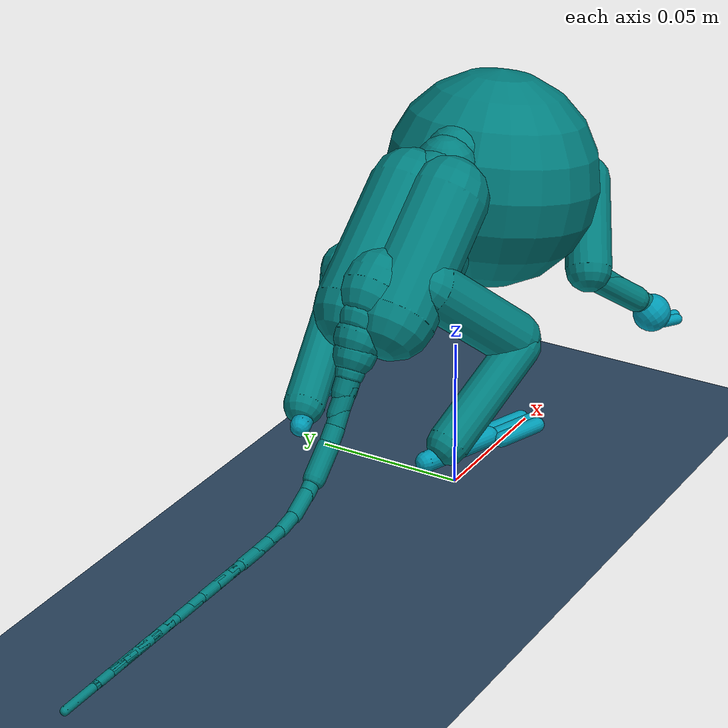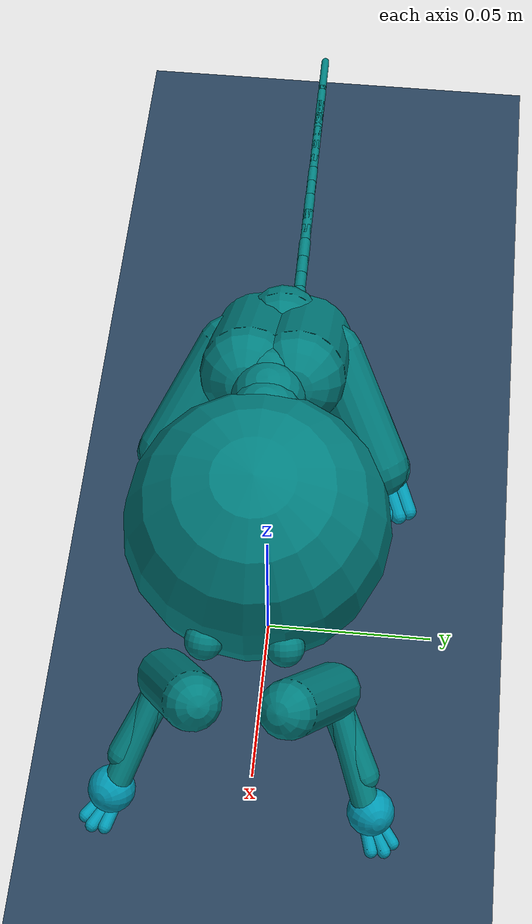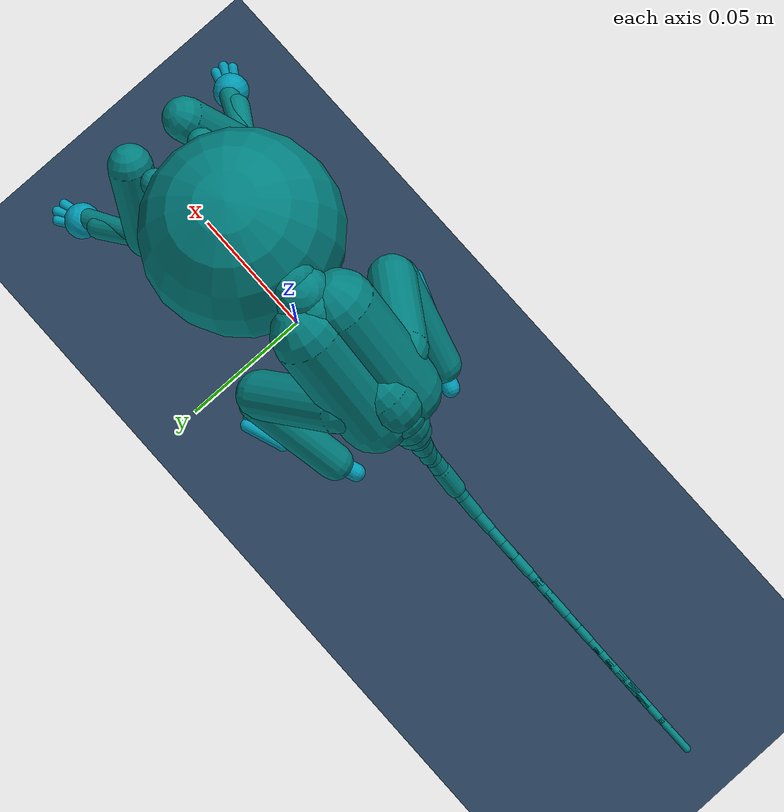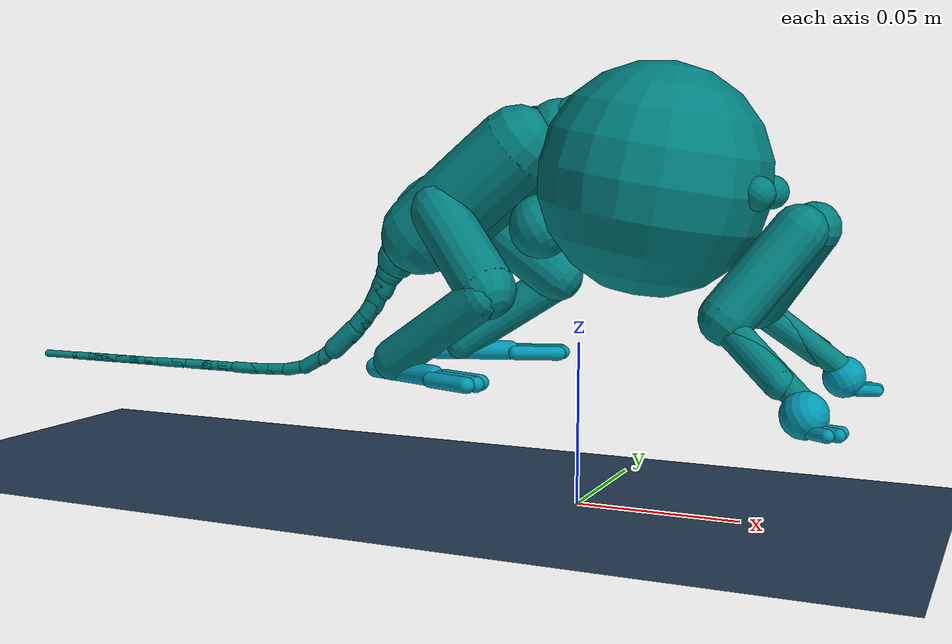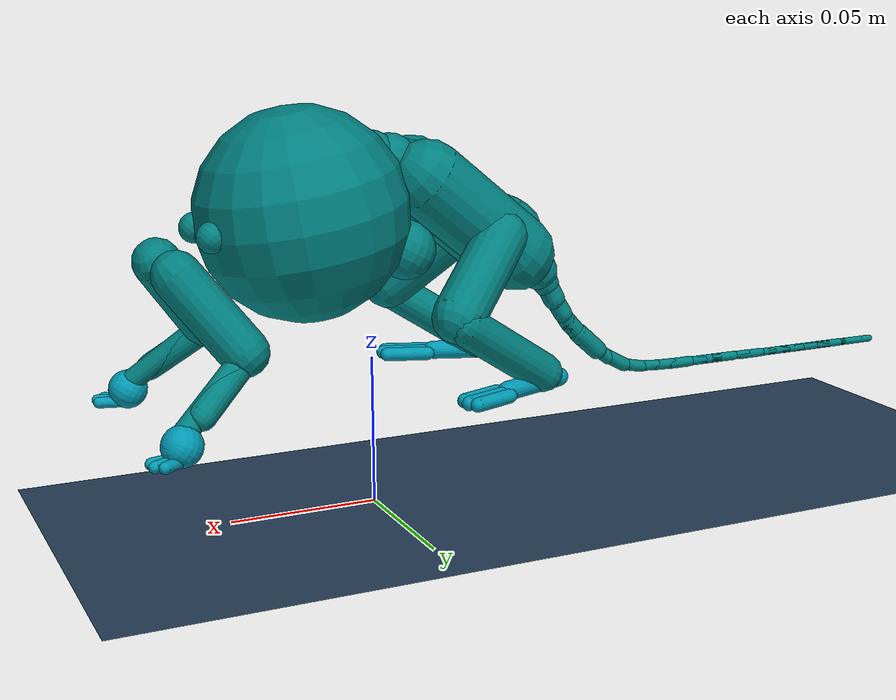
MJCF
<mujoco model="rat">
  <compiler angle="radian"/>
  <size njmax="8000" nconmax="4000"/>
  <default>
    <joint limited="true" solreflimit="0.01 1" solimplimit="0.99 0.9999 0" armature="6e-07" damping="0.001"/>
    <geom friction="0.7 0.005 0.0001" solref="0.005 1"/>
    <site group="3" rgba="0 0 1 1"/>
    <general ctrllimited="true" ctrlrange="-1 1" forcelimited="false" gainprm="0.01"/>
    <default class="bone">
      <geom contype="0" conaffinity="0" group="0" rgba="0.5 0.5 0.5 1" density="1100.0"/>
    </default>
    <default class="collision">
      <geom contype="1" conaffinity="1" condim="3" group="2"/>
      <default class="collision_primitive">
        <geom type="capsule" group="2" rgba="0 0.5 0.5 1" density="500.0"/>
        <default class="collision_primitive_paw">
          <geom condim="3" priority="1" rgba="0 0.6 0.7 1" friction="1.5 0.005 0.0001"/>
        </default>
        <default class="nonself_collision_primitive">
          <geom conaffinity="0"/>
        </default>
      </default>
    </default>
    <default class="lumbar">
      <joint group="3" pos="0.003 0 -0.003" armature="1e-05" damping="0.03" solimplimit="0 .99 .01"/>
      <general gainprm="0.15"/>
      <default class="lumbar_extend">
        <joint stiffness="0.02" range="-0.5235987755982988 0.7853981633974483"/>
        <general gainprm="0.4"/>
      </default>
      <default class="lumbar_bend">
        <joint stiffness="0.03" range="-0.5235987755982988 0.5235987755982988"/>
      </default>
      <default class="lumbar_twist">
        <joint stiffness="0.03" range="-0.5235987755982988 0.5235987755982988"/>
      </default>
    </default>
    <default class="cervical">
      <joint group="3" pos="-0.02 0 -0.05" stiffness="1.0" armature="0.001" damping="1.0" solimplimit="0 .99 .01"/>
      <default class="cervical_extend">
        <joint range="-0.4072434921320102 0.6108652381980153"/>
        <general gainprm="2.5"/>
      </default>
      <default class="cervical_bend">
        <joint range="-0.6108652381980153 0.6108652381980153"/>
        <general gainprm="2.5"/>
      </default>
      <default class="cervical_twist">
        <joint range="-0.6108652381980153 0.6108652381980153"/>
        <general gainprm="2.5"/>
      </default>
    </default>
    <default class="atlas">
      <joint axis="0 -1 0" stiffness="0.002" range="-0.08726646259971647 0.7853981633974483" damping="0.002" solimplimit="0 .99 .01"/>
      <general gainprm="0.025"/>
    </default>
    <default class="mandible">
      <joint stiffness="0.002" range="-0.296705972839036 0.2617993877991494" springref="-0.314159265359" damping="0.002" solimplimit="0 .99 .01"/>
      <general gainprm="0.025"/>
    </default>
    <default class="caudal">
      <joint group="3" stiffness="1e-05" damping="0.002" solimplimit="0 .99 .01"/>
      <general gainprm="0.005"/>
      <default class="caudal_extend">
        <joint range="-0.08726646259971647 0.08726646259971647"/>
      </default>
      <default class="caudal_bend">
        <joint range="-0.08726646259971647 0.08726646259971647"/>
      </default>
    </default>
    <default class="hip">
      <joint armature="1e-05" damping="0.02" solimplimit="0 .99 .01"/>
      <general gainprm="0.2"/>
      <default class="hip_supinate">
        <joint range="-0.6981317007977318 0.5235987755982988"/>
      </default>
      <default class="hip_abduct">
        <joint range="-0.5235987755982988 1.047197551196598"/>
      </default>
      <default class="hip_extend">
        <joint range="-1.570796326794897 1.047197551196598"/>
        <general gainprm="0.3"/>
      </default>
    </default>
    <default class="knee">
      <joint range="-1.221730476396031 1.53588974175501" damping="0.005" solimplimit="0 .99 .01"/>
      <general gainprm="0.2"/>
    </default>
    <default class="ankle">
      <joint range="-0.1396263401595464 1.396263401595464" damping="0.003" solimplimit="0 .99 .01"/>
      <general gainprm="0.2"/>
    </default>
    <default class="toe">
      <joint range="0 0.8726646259971648" damping="0.001" solimplimit="0 .99 .01"/>
      <general gainprm="0.025"/>
    </default>
    <default class="scapula">
      <joint damping="0.005" solimplimit="0 .99 .01"/>
      <general gainprm="0.25"/>
      <default class="scapula_supinate">
        <joint pos="0 0.005000000000000001 0" range="-0.0174532925199433 0.1745329251994329"/>
      </default>
      <default class="scapula_abduct">
        <joint pos="0 0.005000000000000001 -0.01" range="-0.2617993877991494 0.2617993877991494"/>
      </default>
      <default class="scapula_extend">
        <joint pos="0 0 0" range="-0.03490658503988659 0.03490658503988659"/>
        <general gainprm="0.25"/>
      </default>
    </default>
    <default class="shoulder">
      <joint range="-1.308996938995747 0.8726646259971648" damping="0.005" solimplimit="0 .99 .01"/>
      <general gainprm="0.15"/>
    </default>
    <default class="shoulder_sup">
      <joint range="-0.05235987755982989 1.134464013796314" damping="0.005" solimplimit="0 .99 .01"/>
      <general gainprm="0.15"/>
    </default>
    <default class="elbow">
      <joint range="-1.308996938995747 0.6981317007977318" damping="0.003" solimplimit="0 .99 .01"/>
      <general gainprm="0.15"/>
    </default>
    <default class="wrist">
      <joint range="-0.3490658503988659 2.094395102393195" damping="0.002" solimplimit="0 .99 .01"/>
      <general gainprm="0.05"/>
    </default>
    <default class="finger">
      <joint range="0 1.570796326794897" damping="0.002" solimplimit="0 .99 .01"/>
      <general gainprm="0.025"/>
    </default>
    <default class="sensor">
      <site group="4"/>
    </default>
    <default class="tracking_site">
      <site type="sphere" size="0.027" rgba="1 0 0 1" group="3"/>
    </default>
  </default>
  <visual>
    <quality shadowsize="2048"/>
  </visual>
  <statistic meansize="0.003"/>
  <asset>
    <texture type="skybox" builtin="gradient" rgb1=".3 .5 .7" rgb2="0 0 0" width="32" height="512"/>
    <texture name="body" type="cube" builtin="flat" mark="cross" width="128" height="128" rgb1="0.8 0.6 0.4" rgb2="0.8 0.6 0.4" markrgb="1 1 1" random="0.01"/>
    <material name="body" texture="body" texuniform="true" rgba="0.8 0.6 .4 1"/>
    <texture name="grid" type="2d" builtin="checker" width="512" height="512" rgb1=".1 .2 .3" rgb2=".2 .3 .4"/>
    <material name="grid" texture="grid" texrepeat="1 1" texuniform="true" reflectance=".2"/>
  </asset>
  <worldbody>
    <geom name="floor" size="0 0 .1" type="plane" material="grid" condim="3"/>
    <body name="torso" pos="0.03099526054578288 2.058524937651458e-07 0.1">
      <freejoint name="root"/>
      <light name="tracking_light" mode="trackcom" pos="0 0 3"/>
      <camera name="back" mode="trackcom" pos="-1 0 0.5" xyaxes="0 -1 0 1 0 2"/>
      <camera name="side" mode="trackcom" pos="0 -1 0.5" xyaxes="1 0 0 0 1 2"/>
      <camera name="side_alt" mode="trackcom" pos="0.5 -0.561 0.199" xyaxes="0.766 0.643 0.000 -0.162 0.192 0.968"/>
      <camera name="top" mode="trackcom" fovy="100.0" pos="0 0 1" zaxis="0 -0.2 1"/>
      <geom name="collision_torso" class="nonself_collision_primitive" type="sphere" size="0.035" density="468.251260009" pos="-0.008200000000000001 0 0" euler="0 0.1745329251994329 0"/>
      <body name="vertebra_1" pos="-0.01917944366660853 -1.880335592758969e-07 0.01684645690649089">
        <site name="tracking[vertebra_1]" class="tracking_site" />
        <geom name="vertebra_1_collision" class="nonself_collision_primitive" type="sphere" size="0.01" pos="0 0 -0.00164"/>
        <body name="vertebra_2" pos="-0.005629716335317717 2.594803588658443e-06 0.0005320922698783236">
          <site name="tracking[vertebra_2]" class="tracking_site" />
          <geom name="vertebra_2_collision" class="nonself_collision_primitive" type="sphere" size="0.01" pos="0 0 -0.00164"/>
          <body name="vertebra_3" pos="-0.006517166672542409 -1.041062865360766e-05 -9.467218894820495e-05">
            <site name="tracking[vertebra_3]" class="tracking_site" />
            <geom name="vertebra_3_collision" class="nonself_collision_primitive" type="sphere" size="0.01" pos="0 0 -0.00164"/>
            <body name="vertebra_4" pos="-0.006777704185187035 8.746101127162902e-06 -0.001299314772852475">
              <site name="tracking[vertebra_4]" class="tracking_site" />
              <geom name="vertebra_4_collision" class="nonself_collision_primitive" type="sphere" size="0.01" pos="0 0 -0.00164"/>
              <body name="vertebra_5" pos="-0.006890066562303102 -6.204333649723221e-06 -0.002498064978782454">
                <site name="tracking[vertebra_5]" class="tracking_site" />
                <geom name="vertebra_5_collision" class="nonself_collision_primitive" type="sphere" size="0.01" pos="0 0 -0.00164"/>
                <body name="vertebra_6" pos="-0.006185284434681512 5.254442128955049e-06 -0.003641122453027834">
                  <site name="tracking[vertebra_6]" class="tracking_site" />
                  <geom name="vertebra_6_collision" class="nonself_collision_primitive" type="sphere" size="0.01" pos="0 0 -0.00164"/>
                  <joint name="vertebra_6_twist" class="lumbar_twist" axis="1 0 0"/>
                  <body name="pelvis" pos="-0.01307140919884396 3.513221433820909e-06 -0.008120982829772532">
                    <site name="tracking[pelvis]" class="tracking_site" />
                    <geom name="collision_pelvis_L" class="nonself_collision_primitive" size="0.013 0.021 0" density="1548.57736929" pos="-0.00082 0.00656 -0.00574" euler="0 0.8726646259971648 0"/>
                    <geom name="collision_pelvis_R" class="nonself_collision_primitive" size="0.013 0.021 0" density="1548.57736929" pos="-0.00082 -0.00656 -0.00574" euler="0 0.8726646259971648 0"/>
                    <geom name="collision_pelvis_gut" class="nonself_collision_primitive" type="sphere" size="0.01" pos="0.0205 0 -0.0164" euler="0 -0.5235987755982988 0"/>
                    <site name="hip_L" size="0.0022" pos="-0.004810292416764615 0.01149125410671547 -0.009887823301127264"/>
                    <site name="hip_R" size="0.0022" pos="-0.004810292416764615 -0.01149125410671547 -0.009887823301127264"/>
                    <body name="upper_leg_L" pos="-0.004810292416764615 0.01149125410671547 -0.009887823301127264">
                      <site name="tracking[upper_leg_L]" class="tracking_site" />
                      <joint name="hip_L_supinate" class="hip_supinate" axis="-0 -0 1"/>
                      <joint name="hip_L_abduct" class="hip_abduct" axis="1 -0 -0"/>
                      <joint name="hip_L_extend" class="hip_extend" axis="0 1 0"/>
                      <site name="knee_L" type="cylinder" size="0.0006000000000000001 0.004" pos="0.01542264534586861 0.01747899805865108 -0.02570440890978101" zaxis="0 1 0"/>
                      <geom name="upper_leg_L0_collision" class="collision_primitive" size="0.008742403002230982 0.01748480600446196" density="1561.75550556" pos="0.008602524554195285 0.01075315569274411 -0.01290378683129293" euler="0.6108652381980153 -0.6981317007977318 0"/>
                      <body name="lower_leg_L" pos="0.01542264534586861 0.01747899805865108 -0.02570440890978101">
                        <site name="tracking[lower_leg_L]" class="tracking_site" />
                        <joint name="knee_L" class="knee" axis="0.5 -1 0"/>
                        <site name="ankle_L" type="cylinder" size="0.0006000000000000001 0.0026" pos="-0.03230154033783406 -0.004727054683585472 -0.02205958852339887" zaxis="0 1 0"/>
                        <body name="foot_L" pos="-0.03230154033783406 -0.004727054683585472 -0.02205958852339887">
                          <site name="tracking[foot_L]" class="tracking_site" />
                          <joint name="ankle_L" class="ankle" axis="-0.3 1 0"/>
                          <geom name="foot_L_collision" class="collision_primitive_paw" size="0.003210712207833968 0.01238417565878816" density="2041.15978228" pos="0.008274464032760684 0.002256672008934731 -0.002256672008934731" euler="1.570796326794897 -1.221730476396031 0"/>
                          <site name="toe_L" type="cylinder" size="0.0006000000000000001 0.005000000000000001" pos="0.02109994311367263 0.007614327297542731 -0.002752166493087734" zaxis="0 1 0"/>
                          <body name="toe_L" pos="0.02109994311367263 0.007614327297542731 -0.002752166493087734">
                            <site name="tracking[toe_L]" class="tracking_site" />
                            <joint name="toe_L" class="toe" axis="0 1 0"/>
                            <geom name="toe_L0_collision" class="collision_primitive_paw" size="0.002383208424149982 0.007253243030021683" pos="0.008496656120882544 -0.0008496656120882542 0" euler="1.570796326794897 -1.221730476396031 0"/>
                            <geom name="toe_L1_collision" class="collision_primitive_paw" size="0.002383208424149982 0.007771331817880374" pos="0.008071823314838416 0.002548996836264763 0" euler="1.570796326794897 -1.221730476396031 0"/>
                            <geom name="toe_L2_collision" class="collision_primitive_paw" size="0.002383208424149982 0.007253243030021683" pos="0.006797324896706034 0.005522826478573654 0" euler="1.570796326794897 -1.221730476396031 0"/>
                            <site name="sole_L" class="sensor" type="box" size="0.006 0.004 0.002" pos="0.008200000000000001 0.00246 -0.00164" euler="0 0 0.3490658503988659"/>
                          </body>
                        </body>
                        <geom name="lower_leg_L_collision" class="collision_primitive" size="0.006556802251673236 0.01923328660490816" density="1302.86687267" pos="-0.01226339046929431 0.0001224792426221771 -0.01071813365303941" quat="0.5843939876140521 0.278581552273902 0.3900453953818352 0.6547828460754284"/>
                      </body>
                    </body>
                    <body name="upper_leg_R" pos="-0.004810292416764615 -0.01149125410671547 -0.009887823301127264">
                      <site name="tracking[upper_leg_R]" class="tracking_site" />
                      <joint name="hip_R_supinate" class="hip_supinate" axis="0 0 -1"/>
                      <joint name="hip_R_abduct" class="hip_abduct" axis="-1 0 0"/>
                      <joint name="hip_R_extend" class="hip_extend" axis="0 1 0"/>
                      <site name="knee_R" type="cylinder" size="0.0006000000000000001 0.004" pos="0.01542264534586861 -0.01747899805865108 -0.02570440890978101" zaxis="0 1 0"/>
                      <geom name="upper_leg_R0_collision" class="collision_primitive" size="0.008742403002230982 0.01748480600446196" density="1561.75550556" pos="0.008602524554195285 -0.01075315569274411 -0.01290378683129293" euler="-0.6108652381980153 -0.6981317007977318 0"/>
                      <body name="lower_leg_R" pos="0.01542264534586861 -0.01747899805865108 -0.02570440890978101">
                        <site name="tracking[lower_leg_R]" class="tracking_site" />
                        <joint name="knee_R" class="knee" axis="-0.5 -1 0"/>
                        <site name="ankle_R" type="cylinder" size="0.0006000000000000001 0.0026" pos="-0.03230154033783406 0.004727054683585472 -0.02205958852339887" zaxis="0 1 0"/>
                        <body name="foot_R" pos="-0.03230154033783406 0.004727054683585472 -0.02205958852339887">
                          <site name="tracking[foot_R]" class="tracking_site" />
                          <joint name="ankle_R" class="ankle" axis="0.3 1 0"/>
                          <geom name="foot_R_collision" class="collision_primitive_paw" size="0.003210712207833968 0.01238417565878816" density="2041.15978228" pos="0.008274464032760684 -0.002256672008934731 -0.002256672008934731" euler="1.570796326794897 1.221730476396031 0"/>
                          <site name="toe_R" type="cylinder" size="0.0006000000000000001 0.005000000000000001" pos="0.02109994311367263 -0.007614327297542731 -0.002752166493087734" zaxis="0 1 0"/>
                          <body name="toe_R" pos="0.02109994311367263 -0.007614327297542731 -0.002752166493087734">
                            <site name="tracking[toe_R]" class="tracking_site" />
                            <joint name="toe_R" class="toe" axis="0 1 0"/>
                            <geom name="toe_R0_collision" class="collision_primitive_paw" size="0.002383208424149982 0.007253243030021683" pos="0.008496656120882544 0.0008496656120882542 0" euler="1.570796326794897 1.221730476396031 0"/>
                            <geom name="toe_R1_collision" class="collision_primitive_paw" size="0.002383208424149982 0.007771331817880374" pos="0.008071823314838416 -0.002548996836264763 0" euler="1.570796326794897 1.221730476396031 0"/>
                            <geom name="toe_R2_collision" class="collision_primitive_paw" size="0.002383208424149982 0.007253243030021683" pos="0.006797324896706034 -0.005522826478573654 0" euler="1.570796326794897 1.221730476396031 0"/>
                            <site name="sole_R" class="sensor" type="box" size="0.006 0.004 0.002" pos="0.008200000000000001 -0.00246 -0.00164" euler="0 0 -0.3490658503988659"/>
                          </body>
                        </body>
                        <geom name="lower_leg_R_collision" class="collision_primitive" size="0.006556802251673236 0.01923328660490816" density="1302.86687267" pos="-0.01202896613332032 -0.0001615786954038913 -0.0105741369075766" quat="0.6564315036111004 0.3901417719765998 0.2779576926818845 0.5827749135856758"/>
                      </body>
                    </body>
                    <body name="vertebra_C1" pos="-0.01578991172983967 0 -0.01188162292618369">
                      <body name="vertebra_C2" pos="-0.003877053782139318 0 -0.004226431204517265">
                        <body name="vertebra_C3" pos="-0.003424026812590301 0 -0.004263077436113009">
                          <body name="vertebra_C4" pos="-0.003271874666658243 0 -0.004416838152219076">
                            <body name="vertebra_C5" pos="-0.003175974271018995 0 -0.004569340859213865">
                              <body name="vertebra_C6" pos="-0.003119193850481998 0 -0.004901355281343103">
                                <body name="vertebra_C7" pos="-0.003215811269353427 0 -0.005644371131998142">
                                  <body name="vertebra_C8" pos="-0.003445853504479746 0 -0.005518181272185016">
                                    <body name="vertebra_C9" pos="-0.00428517277518055 0 -0.005115018280065306">
                                      <body name="vertebra_C10" pos="-0.004861545164642819 0 -0.004562186342662474">
                                        <body name="vertebra_C11" pos="-0.005374786984897312 0 -0.004364207168994159">
                                          <body name="vertebra_C12" pos="-0.006134478460615445 0 -0.003841502801916079">
                                            <body name="vertebra_C13" pos="-0.00689742745021331 0 -0.002592428185172008">
                                              <body name="vertebra_C14" pos="-0.006825037737343853 0 -0.0009088998932926352">
                                                <body name="vertebra_C15" pos="-0.006526211069134326 0 -0.0003153309968866059">
                                                  <body name="vertebra_C16" pos="-0.006693909447912509 0 -0.0001384885270556547">
                                                    <body name="vertebra_C17" pos="-0.006485426246850028 0 -1.670467139216664e-05">
                                                      <body name="vertebra_C18" pos="-0.006207432181797656 0 1.825573131422967e-10">
                                                        <body name="vertebra_C19" pos="-0.006204259597825435 0 -8.201902227376357e-10">
                                                          <body name="vertebra_C20" pos="-0.006228376819942582 0 2.516520472814411e-06">
                                                            <body name="vertebra_C21" pos="-0.006117653417468877 0 -0.0001096641718318435">
                                                            <body name="vertebra_C22" pos="-0.006508107849533902 0 -1.311987483649039e-05">
                                                            <body name="vertebra_C23" pos="-0.006390755412623964 0 1.751401410207947e-09">
                                                            <body name="vertebra_C24" pos="-0.006180715195251588 0 -1.247135173292058e-09">
                                                            <body name="vertebra_C25" pos="-0.005968198951736014 0 1.379492349778272e-10">
                                                            <body name="vertebra_C26" pos="-0.005628676580141834 0 -1.365630198950016e-09">
                                                            <body name="vertebra_C27" pos="-0.005193120282271783 0 1.395692942078239e-09">
                                                            <body name="vertebra_C28" pos="-0.005036239104451245 0 5.073982356059771e-07">
                                                            <body name="vertebra_C29" pos="-0.004773896837169728 0 -6.205554570421282e-11">
                                                            <body name="vertebra_C30" pos="-0.00400535162294913 0 -4.197183187153738e-07">
                                                            <geom name="vertebra_C30_collision" class="collision_primitive" size="0.001297856215387583 0.00616252573672682 0.003456539940088987" density="507.157357703" pos="-3.413935800722356e-17 0 0" quat="0 0.7071067811865475 0 0.7071067811865476"/>
                                                            <site name="tracking[vertebra_C30]" class="tracking_site" />

                                                          </body>
                                                            <joint name="vertebra_C29_bend" class="caudal_bend" pos="0.00374077633023262 0 4.862608565869494e-11" axis="1.299892892972596e-08 0 -0.9999999999999999" range="-0.2617993877991494 0.2617993877991494"/>
                                                            <geom name="vertebra_C29_collision" class="collision_primitive" size="0.001296832459047437 0.005963775183772668 0.002618767786771059" density="507.157357703" pos="2.275957200481571e-17 0 0" quat="0 0.7071067811865475 0 0.7071067811865476"/>
                                                            <site name="tracking[vertebra_C29]" class="tracking_site" />

                                                          </body>
                                                            <geom name="vertebra_C28_collision" class="collision_primitive" size="0.001296832342632115 0.005764920220826752 0.002877779770642519" density="507.157357703" pos="-2.275957200481571e-17 0 0" quat="0 0.7071067811865475 0 0.7071067811865476"/>
                                                            <site name="tracking[vertebra_C28]" class="tracking_site" />

                                                          </body>
                                                            <joint name="vertebra_C27_extend" class="caudal_extend" pos="0.003853817004710296 0 -1.035744388955742e-09" axis="0 0.9999999999999999 0" range="-0.2617993877991494 0.2617993877991494"/>
                                                            <geom name="vertebra_C27_collision" class="collision_primitive" size="0.001379601657390594 0.005566182837355882 0.003061448689550161" density="507.157357703" pos="-2.275957200481571e-17 -5.689893001203927e-18 0" quat="0 0.7071067811865475 0 0.7071067811865476"/>
                                                            <site name="tracking[vertebra_C27]" class="tracking_site" />

                                                          </body>
                                                            <geom name="vertebra_C26_collision" class="collision_primitive" size="0.001379605033434927 0.005367331657907926 0.003061428898945451" density="507.157357703" pos="0 0 0" quat="0 0.7071067811865475 0 0.7071067811865476"/>
                                                            <site name="tracking[vertebra_C26]" class="tracking_site" />

                                                          </body>
                                                            <joint name="vertebra_C25_bend" class="caudal_bend" pos="0.003596235066652297 0 -8.31235487048931e-11" axis="-2.311404765380703e-08 0 -0.9999999999999998" range="-0.2617993877991494 0.2617993877991494"/>
                                                            <geom name="vertebra_C25_collision" class="collision_primitive" size="0.001379601657390594 0.005168589268578216 0.003478922415524721" density="507.157357703" pos="2.275957200481571e-17 5.689893001203927e-18 0" quat="0 0.7071067811865475 0 0.7071067811865476"/>
                                                            <site name="tracking[vertebra_C25]" class="tracking_site" />

                                                          </body>
                                                            <geom name="vertebra_C24_collision" class="collision_primitive" size="0.00137960200663656 0.004969772635377012 0.003478918690234423" density="507.157357703" pos="0 5.689893001203927e-18 0" quat="0 0.7071067811865475 0 0.7071067811865476"/>
                                                            <site name="tracking[vertebra_C24]" class="tracking_site" />

                                                          </body>
                                                            <joint name="vertebra_C23_extend" class="caudal_extend" pos="0.003596219234168395 0 -9.855522597059318e-10" axis="0 1 0" range="-0.2617993877991494 0.2617993877991494"/>
                                                            <geom name="vertebra_C23_collision" class="collision_primitive" size="0.001379598979838192 0.004770975443534553 0.00374077633023262" density="507.157357703" pos="0 0 0" quat="0 0.7071067811865475 0 0.7071067811865476"/>
                                                            <site name="tracking[vertebra_C23]" class="tracking_site" />

                                                          </body>
                                                            <geom name="vertebra_C22_collision" class="collision_primitive" size="0.0013796032872051 0.004572178106172942 0.003740778425708413" density="507.157357703" pos="2.275957200481571e-17 0 0" quat="0 0.7071067811865475 0 0.7071067811865476"/>
                                                            <site name="tracking[vertebra_C22]" class="tracking_site" />

                                                          </body>
                                                            <joint name="vertebra_C21_bend" class="caudal_bend" pos="0.003863156863235094 0 6.925039212804248e-05" axis="0.01792297618959377 0 -0.9998393705613454" range="-0.2617993877991494 0.2617993877991494"/>
                                                            <geom name="vertebra_C21_collision" class="collision_primitive" size="0.00153051526285708 0.004972128779627383 0.003853817004710436" density="507.157357703" pos="-2.275957200481571e-17 0 0" quat="0 0.7071067811865475 0 0.7071067811865476"/>
                                                            <site name="tracking[vertebra_C21]" class="tracking_site" />
                                                          </body>
                                                            <geom name="vertebra_C20_collision" class="collision_primitive" size="0.001498286379501224 0.005176536360522732 0.003596158232539892" density="507.157357703" pos="0 2.844946500601963e-18 0" quat="0 0.7071067811865475 0 0.7071067811865476"/>
                                                            <site name="tracking[vertebra_C20]" class="tracking_site" />
                                                          </body>
                                                          <joint name="vertebra_C19_extend" class="caudal_extend" pos="0.00427856529131528 0 5.656174381406233e-10" axis="-0 1 0" range="-0.2617993877991494 0.2617993877991494"/>
                                                          <geom name="vertebra_C19_collision" class="collision_primitive" size="0.00163395400159061 0.005171378143131733 0.003596235066652298" density="507.157357703" pos="0 0 0" quat="0 0.7071067811865475 0 0.7071067811865476"/>
                                                          <site name="tracking[vertebra_C19]" class="tracking_site" />
                                                        </body>
                                                        <geom name="vertebra_C18_collision" class="collision_primitive" size="0.001633956097066402 0.004912774951662868 0.003596230177208781" density="507.157357703" pos="-4.551914400963142e-17 3.556183125752454e-19 0" quat="0 0.7071067811865475 0 0.7071067811865476"/>
                                                        <site name="tracking[vertebra_C18]" class="tracking_site" />
                                                      </body>
                                                      <joint name="vertebra_C17_bend" class="caudal_bend" pos="0.004279410240846748 0 1.102258187892252e-05" axis="0.002575715973669538 0 -0.9999966828381097" range="-0.2617993877991494 0.2617993877991494"/>
                                                      <geom name="vertebra_C17_collision" class="collision_primitive" size="0.001633955631405115 0.004654210468288511 0.00359621923416853" density="507.157357703" pos="4.551914400963142e-17 3.556183125752454e-19 0" quat="0 0.7071067811865475 0 0.7071067811865476"/>
                                                      <site name="tracking[vertebra_C17]" class="tracking_site" />
                                                    </body>
                                                    <geom name="vertebra_C16_collision" class="collision_primitive" size="0.00187811441719532 0.004395640251459554 0.003866892773658037" density="507.157357703" pos="4.551914400963142e-17 0 0" quat="0 0.7071067811865475 0 0.7071067811865476"/>
                                                    <site name="tracking[vertebra_C16]" class="tracking_site" />
                                                  </body>
                                                  <joint name="vertebra_C15_extend" class="caudal_extend" pos="0.003932832330984124 0 0.0001900251043645143" axis="-0 0.9999999999999999 0" range="-0.2617993877991494 0.2617993877991494"/>
                                                  <geom name="vertebra_C15_collision" class="collision_primitive" size="0.001845342689193785 0.004137067589908838 0.003863777499645948" density="507.157357703" pos="0 -2.844946500601963e-18 0" quat="-3.048411496515643e-15 0.6991848455046811 3.117107305228081e-15 0.7149409428873096"/>
                                                  <site name="tracking[vertebra_C15]" class="tracking_site" />
                                                </body>
                                                <geom name="vertebra_C14_collision" class="collision_primitive" size="0.00184506073128432 0.003878506540786475 0.003863667836412787" density="507.157357703" pos="-4.551914400963142e-17 -4.267419750902945e-18 0" quat="0 0.6866112770928985 0 0.7270247273434782"/>
                                                <site name="tracking[vertebra_C14]" class="tracking_site" />
                                              </body>
                                              <joint name="vertebra_C13_bend" class="caudal_bend" pos="0.003512235031584721 0 0.001320088852626807" axis="0.3518244833508478 0 -0.9360659874789323" range="-0.2617993877991494 0.2617993877991494"/>
                                              <geom name="vertebra_C13_collision" class="collision_primitive" size="0.002090706257149577 0.003959977824706584 0.004278565291315317" density="507.157357703" pos="-1.137978600240785e-17 0 1.778091562876227e-19" quat="1.892164903646171e-16 0.6293932092262298 -2.336181429597261e-16 0.7770869888113604"/>
                                              <site name="tracking[vertebra_C13]" class="tracking_site" />
                                            </body>
                                            <geom name="vertebra_C12_collision" class="collision_primitive" size="0.002433547750115395 0.004146181046962738 0.004279083106666803" density="507.157357703" pos="0 0 0" quat="1.235560731911126e-17 0.5080793265726891 -7.288463628123299e-18 0.8613102796956755"/>
                                            <site name="tracking[vertebra_C12]" class="tracking_site" />
                                          </body>
                                          <joint name="vertebra_C11_extend" class="caudal_extend" pos="0.002737042072842745 0 0.002222417124567619" axis="-0 0.9999999999999998 0" range="-0.2617993877991494 0.2617993877991494"/>
                                          <geom name="vertebra_C11_collision" class="collision_primitive" size="0.002499659545719624 0.003896944806911051 0.0042794244363904" density="507.157357703" pos="-2.275957200481571e-17 0 0" quat="8.0408085539503e-17 0.4349444185915732 -3.883920751947562e-17 0.9004573020060631"/>
                                          <site name="tracking[vertebra_C11]" class="tracking_site" />
                                        </body>
                                        <geom name="vertebra_C10_collision" class="collision_primitive" size="0.003421195782721043 0.005196776997763664 0.003937873989343643" density="507.157357703" pos="0 0 -1.422473250300982e-18" quat="6.606927199194023e-17 0.404822478038031 -2.925028864881283e-17 0.914395298147988"/>
                                        <site name="tracking[vertebra_C10]" class="tracking_site" />
                                      </body>
                                      <joint name="vertebra_C9_bend" class="caudal_bend" pos="0.002886456803488155 0 0.003445433845742364" axis="0.7665487416508834 0 -0.6421861308635113" range="-0.2617993877991494 0.2617993877991494"/>
                                      <geom name="vertebra_C9_collision" class="collision_primitive" size="0.003130586817860603 0.004494897730182856 0.003937420435249805" density="507.157357703" pos="0 0 -2.844946500601963e-18" quat="0.9339363308955284 -2.188685129702187e-17 0.3574394072194587 5.718710691193161e-17"/>
                                      <site name="tracking[vertebra_C9]" class="tracking_site" />
                                    </body>
                                    <geom name="vertebra_C8_collision" class="collision_primitive" size="0.003015818307176232 0.003957028646254912 0.003936874680221081" density="507.157357703" pos="0 0 -2.844946500601963e-18" quat="0.9557562961254608 -1.801208397451436e-17 0.2941596546376485 5.852319444074877e-17"/>
                                    <site name="tracking[vertebra_C8]" class="tracking_site" />
                                  </body>
                                  <joint name="vertebra_C7_extend" class="caudal_extend" pos="0.00269018377049155 0 0.004721793147078994" axis="-0 0.9999999999999998 0" range="-0.2617993877991494 0.2617993877991494"/>
                                  <geom name="vertebra_C7_collision" class="collision_primitive" size="0.003256943542510271 0.004638898652046919 0.003752123331651092" density="507.157357703" pos="0 0 0" quat="-0.9587181623873691 -0.02864387142163538 -0.2629262253293439 0.1044452668751926"/>
                                  <site name="tracking[vertebra_C7]" class="tracking_site" />
                                </body>
                                <joint name="vertebra_C6_extend" class="caudal_extend" pos="0.002103353485914151 0 0.00330511125979672" axis="-0 0.9999999999999998 0" range="-0.2617993877991494 0.2617993877991494"/>
                                <joint name="vertebra_C6_bend" class="caudal_bend" pos="0.002103353485914151 0 0.00330511125979672" axis="0.8436498258045544 0 -0.5368938176398985" range="-0.2617993877991494 0.2617993877991494"/>
                                <geom name="vertebra_C6_collision" class="collision_primitive" size="0.003849131055176258 0.004441792552825063 0.003917634021490812" density="507.157357703" pos="0 0 -5.689893001203927e-18" quat="-0.9684724633255426 -0.0201653665451908 -0.2338356379719502 0.08351850206094803"/>
                                <site name="tracking[vertebra_C6]" class="tracking_site" />
                              </body>
                              <joint name="vertebra_C5_extend" class="caudal_extend" pos="0.002012248229580733 0 0.00289506377246373" axis="-0 0.9999999999999998 0" range="-0.2617993877991494 0.2617993877991494"/>
                              <joint name="vertebra_C5_bend" class="caudal_bend" pos="0.002012248229580733 0 0.00289506377246373" axis="0.8211323953906199 0 -0.5707377587299287" range="-0.2617993877991494 0.2617993877991494"/>
                              <geom name="vertebra_C5_collision" class="collision_primitive" size="0.004545329604297876 0.003776637255214155 0.003525696694850922" density="507.157357703" pos="0 0 0" quat="0.959555122982002 -1.723817788817547e-17 0.2815208091047534 5.875580549826768e-17"/>
                              <site name="tracking[vertebra_C5]" class="tracking_site" />
                            </body>
                            <joint name="vertebra_C4_extend" class="caudal_extend" pos="0.002536050295425576 0 0.003423518576346546" axis="-0 0.9999999999999996 0" range="-0.2617993877991494 0.2617993877991494"/>
                            <joint name="vertebra_C4_bend" class="caudal_bend" pos="0.002536050295425576 0 0.003423518576346546" axis="0.8035447758282259 0 -0.595244313907462" range="-0.2617993877991494 0.2617993877991494"/>
                            <geom name="vertebra_C4_collision" class="collision_primitive" size="0.006652826443314552 0.003851699293591082 0.004260519985109568" density="507.157357703" pos="0 0 -5.689893001203927e-18" quat="0.6698964656770412 0.2263597253784533 0.2263597253784533 0.6698964656770412"/>
                            <site name="tracking[vertebra_C4]" class="tracking_site" />
                          </body>
                          <joint name="vertebra_C3_extend" class="caudal_extend" pos="0.002814632916334075 0 0.003504352837554861" axis="-0 0.9999999999999998 0" range="-0.2617993877991494 0.2617993877991494"/>
                          <joint name="vertebra_C3_bend" class="caudal_bend" pos="0.002814632916334075 0 0.003504352837554861" axis="0.7796571863505312 0 -0.6262065727633115" range="-0.2617993877991494 0.2617993877991494"/>
                          <geom name="vertebra_C3_collision" class="collision_primitive" size="0.007895978167653084 0.00409743981435895 0.00449473550543189" density="507.157357703" pos="0 0 5.689893001203927e-18" quat="0.658413368499565 0.2578601097127201 0.2578601097127201 0.658413368499565"/>
                          <site name="tracking[vertebra_C3]" class="tracking_site" />
                        </body>
                        <joint name="vertebra_C2_extend" class="caudal_extend" pos="0.00355852682138871 0 0.003879200456107687" axis="-0 1 0" range="-0.2617993877991494 0.2617993877991494"/>
                        <joint name="vertebra_C2_bend" class="caudal_bend" pos="0.00355852682138871 0 0.003879200456107687" axis="0.7369087259505994 0 -0.6759922555901543" range="-0.2617993877991494 0.2617993877991494"/>
                        <site name="tracking[vertebra_C2]" class="tracking_site" />
                        <geom name="vertebra_C2_collision" class="collision_primitive" size="0.008360366337001324 0.003506151144392788 0.005264153238385916" density="507.157357703" pos="0 0 0" quat="0.6165945006583455 0.3461375763448482 0.3461375763448482 0.6165945006583455"/>
                      </body>
                      <joint name="vertebra_C1_extend" class="caudal_extend" pos="0.004342320538000662 0 0.003267517649237096" axis="0 1 0" range="-0.2617993877991494 0.2617993877991494"/>
                      <joint name="vertebra_C1_bend" class="caudal_bend" pos="0.004342320538000662 0 0.003267517649237096" axis="0.6012684687925202 0 -0.7990470752314273" range="-0.2617993877991494 0.2617993877991494"/>
                      <geom name="vertebra_C1_collision" class="collision_primitive" size="0.01096499338746071 0.002370424568653107 0.005434373859316111" density="507.157357703" pos="0 -2.778268066994105e-21 0" quat="0.5772408551843025 0.3506607415056362 0.3240276763775721 0.662447057819841"/>
                      <site name="tracking[vertebra_C1]" class="tracking_site" />
                    </body>
                  </body>
                </body>
                <joint name="vertebra_5_bend" class="lumbar_bend" axis="0 0 1"/>
              </body>
              <joint name="vertebra_4_extend" class="lumbar_extend" axis="0 1 0"/>
            </body>
            <joint name="vertebra_3_twist" class="lumbar_twist" axis="1 0 0"/>
          </body>
          <joint name="vertebra_2_bend" class="lumbar_bend" axis="0 0 1"/>
        </body>
        <joint name="vertebra_1_extend" class="lumbar_extend" axis="0 1 0"/>
      </body>
      <body name="scapula_L" pos="0.00656 0.00164 0.01148">
        <site name="tracking[scapula_L]" class="tracking_site" />
        <joint name="scapula_L_supinate" class="scapula_supinate" pos="0 -0.005000000000000001 0" axis="-0 -0 1"/>
        <joint name="scapula_L_abduct" class="scapula_abduct" pos="0 -0.005000000000000001 -0.01" axis="1 -0 -0"/>
        <joint name="scapula_L_extend" class="scapula_extend" pos="0 0 0" axis="0.3 1 0"/>
        <site name="shoulder_L" size="0.002" pos="0.0287 0.00984 -0.02542"/>
        <body name="upper_arm_L" pos="0.0287 0.00984 -0.02542">
          <site name="tracking[upper_arm_L]" class="tracking_site" />
          <joint name="shoulder_L" class="shoulder" axis="0 1 0"/>
          <joint name="shoulder_sup_L" class="shoulder_sup" axis="0 0 -1"/>
          <site name="elbow_L" type="cylinder" size="0.0006000000000000001 0.004" pos="-0.01593120836133218 0.01035528543486592 -0.02230369170586505" zaxis="0 1 0.2"/>
          <body name="lower_arm_L" pos="-0.01593120836133218 0.01035528543486592 -0.02230369170586505">
            <site name="tracking[lower_arm_L]" class="tracking_site" />
            <joint name="elbow_L" class="elbow" axis="0 1 0.2"/>
            <site name="wrist_L" type="cylinder" size="0.0008 0.0034" pos="0.02160265376479308 0.01260154802946263 -0.01980243261772699" zaxis="0 1 0"/>
            <body name="hand_L" pos="0.02160265376479308 0.01260154802946263 -0.01980243261772699">
              <site name="tracking[hand_L]" class="tracking_site" />
              <joint name="wrist_L" class="wrist" axis="0.6 -1 0"/>
              <geom name="hand_L_collision" class="collision_primitive_paw" type="sphere" size="0.006470191588681792 0.003697252336389595 0.002218351401833757" density="2531.78122831" pos="0.001515873457919734 0.0007579367289598669 -0.004547620373759201" euler="-0.6981317007977318 0.8726646259971648 0.7853981633974483"/>
              <site name="finger_L" type="cylinder" size="0.0006000000000000001 0.005000000000000001" pos="0.003031746915839468 0.001515873457919734 -0.008337304018558537" zaxis="-0.2 1 0"/>
              <body name="finger_L" pos="0.003031746915839468 0.001515873457919734 -0.008337304018558537">
                <site name="tracking[finger_L]" class="tracking_site" />
                <joint name="finger_L" class="finger" axis="-0.5 1 0"/>
                <geom name="finger_L0_collision" class="collision_primitive_paw" size="0.001848626168194797 0.003235095794340896" pos="0.004926588738239136 -0.0007579367289598669 0" euler="1.570796326794897 -1.308996938995747 0"/>
                <geom name="finger_L1_collision" class="collision_primitive_paw" size="0.001848626168194797 0.003697252336389595" pos="0.004547620373759201 0.001894841822399667 0" euler="1.570796326794897 -1.099557428756428 0"/>
                <geom name="finger_L2_collision" class="collision_primitive_paw" size="0.001848626168194797 0.003235095794340896" pos="0.002652778551359534 0.003789683644799335 0" euler="1.570796326794897 -0.9599310885968813 0"/>
                <site name="palm_L" class="sensor" type="box" size="0.004 0.004 0.002" pos="0.00492 0.00246 -0.00164" euler="0 0 0.4886921905584123"/>
              </body>
            </body>
            <geom name="radius_L_collision" class="collision_primitive" size="0.003732165792697991 0.01591658941003555" pos="0.01150545467526729 0.006850732667129763 -0.01222632491350886" quat="0.02376493230846292 0.7917721441518218 0.4232293467931716 0.4397829234413568"/>
            <geom name="ulna_L_collision" class="collision_primitive" size="0.004390783285527048 0.01317234985658114" pos="0.006749764363547758 0.004992418652633264 -0.009489848452311813" quat="0.01282244452041863 0.7446249872782607 0.4776065607195328 0.4661128472752391"/>
          </body>
          <geom name="humerus_L_collision" class="collision_primitive" size="0.007771321151869356 0.01554264230373871" pos="-0.007743344450064287 0.005787978890072665 -0.01198335273722202" quat="0.472560999180163 0.3450082805420177 0.0007016050154913519 0.8109592444517103"/>
        </body>
        <geom name="scapula_L_collision" class="nonself_collision_primitive" type="sphere" size="0.005005370825529099 0.01463182792067528 0.02431104406714439" density="513.564612303" pos="0.01757062251063465 0.008636916680112587 -0.01522952249267691" quat="0.1844194062696375 0.7692222855376651 0.4740322845517004 0.3867556738123709"/>
      </body>
      <body name="scapula_R" pos="0.00656 -0.00164 0.01148">
        <site name="tracking[scapula_R]" class="tracking_site" />
        <joint name="scapula_R_supinate" class="scapula_supinate" pos="0 0.005000000000000001 0" axis="0 0 -1"/>
        <joint name="scapula_R_abduct" class="scapula_abduct" pos="0 0.005000000000000001 -0.01" axis="-1 0 0"/>
        <joint name="scapula_R_extend" class="scapula_extend" pos="0 0 0" axis="-0.3 1 0"/>
        <site name="shoulder_R" size="0.002" pos="0.0287 -0.00984 -0.02542"/>
        <body name="upper_arm_R" pos="0.0287 -0.00984 -0.02542">
          <site name="tracking[upper_arm_R]" class="tracking_site" />
          <joint name="shoulder_R" class="shoulder" axis="0 1 0"/>
          <joint name="shoulder_sup_R" class="shoulder_sup" axis="-0 -0 1"/>
          <site name="elbow_R" type="cylinder" size="0.0006000000000000001 0.004" pos="-0.01593120836133218 -0.01035528543486592 -0.02230369170586505" zaxis="0 1 -0.2"/>
          <body name="lower_arm_R" pos="-0.01593120836133218 -0.01035528543486592 -0.02230369170586505">
            <site name="tracking[lower_arm_R]" class="tracking_site" />
            <joint name="elbow_R" class="elbow" axis="0 1 -0.2"/>
            <site name="wrist_R" type="cylinder" size="0.0008 0.0034" pos="0.02160265376479308 -0.01260154802946263 -0.01980243261772699" zaxis="0 1 0"/>
            <body name="hand_R" pos="0.02160265376479308 -0.01260154802946263 -0.01980243261772699">
              <site name="tracking[hand_R]" class="tracking_site" />
              <joint name="wrist_R" class="wrist" axis="-0.6 -1 0"/>
              <geom name="hand_R_collision" class="collision_primitive_paw" type="sphere" size="0.006470191588681792 0.003697252336389595 0.002218351401833757" density="2531.78122831" pos="0.001515873457919734 -0.0007579367289598669 -0.004547620373759201" euler="0.6981317007977318 0.8726646259971648 -0.7853981633974483"/>
              <site name="finger_R" type="cylinder" size="0.0006000000000000001 0.005000000000000001" pos="0.003031746915839468 -0.001515873457919734 -0.008337304018558537" zaxis="0.2 1 0"/>
              <body name="finger_R" pos="0.003031746915839468 -0.001515873457919734 -0.008337304018558537">
                <joint name="finger_R" class="finger" axis="0.5 1 0"/>
                <geom name="finger_R0_collision" class="collision_primitive_paw" size="0.001848626168194797 0.003235095794340896" pos="0.004926588738239136 0.0007579367289598669 0" euler="1.570796326794897 1.308996938995747 0"/>
                <geom name="finger_R1_collision" class="collision_primitive_paw" size="0.001848626168194797 0.003697252336389595" pos="0.004547620373759201 -0.001894841822399667 0" euler="1.570796326794897 1.099557428756428 0"/>
                <geom name="finger_R2_collision" class="collision_primitive_paw" size="0.001848626168194797 0.003235095794340896" pos="0.002652778551359534 -0.003789683644799335 0" euler="1.570796326794897 0.9599310885968813 0"/>
                <site name="palm_R" class="sensor" type="box" size="0.004 0.004 0.002" pos="0.00492 -0.00246 -0.00164" euler="0 0 -0.4886921905584123"/>
                <site name="tracking[finger_R]" class="tracking_site" />
              </body>
            </body>
            <geom name="radius_R_collision" class="collision_primitive" size="0.003732165792697991 0.01591658941003555" pos="0.01150546139578159 -0.0068511746740596 -0.01222632995360402" quat="0.4397828585901176 0.423230473256099 0.7917715587074765 0.02376557635859348"/>
            <geom name="ulna_R_collision" class="collision_primitive" size="0.004390783285527048 0.01317234985658114" pos="0.006749766930753688 -0.004992858736000205 -0.009489848507155575" quat="0.4661127828257156 0.4776067795325061 0.7446248854693838 0.01282254930824632"/>
          </body>
          <geom name="humerus_R_collision" class="collision_primitive" size="0.007771321151869356 0.01554264230373871" pos="-0.007743341889514446 -0.005788347560550173 -0.01198335067124012" quat="0.8109593935310486 0.0007013948082913995 0.3450082795040448 0.4725607444157158"/>
        </body>
        <geom name="scapula_R_collision" class="nonself_collision_primitive" type="sphere" size="0.005005370266735553 0.01463183127343655 0.02431103959679604" density="513.564646393" pos="0.01757062018850453 -0.008637295267367218 -0.01522952062810994" quat="0.3867556972129688 0.4740321312040688 0.7692223496423682 0.1844194839763772"/>
      </body>
    </body>
  </worldbody>

  <contact>

    <exclude name="pelvis:vertebra_C2" body1="pelvis" body2="vertebra_C2"/>
    <exclude name="pelvis:vertebra_C3" body1="pelvis" body2="vertebra_C3"/>
    <exclude name="pelvis:vertebra_C4" body1="pelvis" body2="vertebra_C4"/>
    <exclude name="vertebra_C1:vertebra_C3" body1="vertebra_C1" body2="vertebra_C3"/>
    <exclude name="vertebra_C1:vertebra_C4" body1="vertebra_C1" body2="vertebra_C4"/>
    <exclude name="vertebra_C2:vertebra_C4" body1="vertebra_C2" body2="vertebra_C4"/>
    <exclude name="vertebra_C3:vertebra_C5" body1="vertebra_C3" body2="vertebra_C5"/>
    <exclude name="vertebra_C4:vertebra_C6" body1="vertebra_C4" body2="vertebra_C6"/>
    <exclude name="vertebra_C5:vertebra_C7" body1="vertebra_C5" body2="vertebra_C7"/>
    <exclude name="pelvis:vertebra_C5" body1="pelvis" body2="vertebra_C5"/>
    <exclude name="pelvis:vertebra_C6" body1="pelvis" body2="vertebra_C6"/>
    <exclude name="vertebra_C2:vertebra_C5" body1="vertebra_C2" body2="vertebra_C5"/>
    <exclude name="vertebra_C3:vertebra_C6" body1="vertebra_C3" body2="vertebra_C6"/>
    <exclude name="vertebra_C4:vertebra_C7" body1="vertebra_C4" body2="vertebra_C7"/>
    <exclude name="upper_arm_L:upper_arm_R" body1="upper_arm_L" body2="upper_arm_R"/>
    <exclude name="upper_leg_L:vertebra_C1" body1="upper_leg_L" body2="vertebra_C1"/>
    <exclude name="upper_leg_L:vertebra_C2" body1="upper_leg_L" body2="vertebra_C2"/>
    <exclude name="upper_leg_R:vertebra_C1" body1="upper_leg_R" body2="vertebra_C1"/>
    <exclude name="upper_leg_R:vertebra_C2" body1="upper_leg_R" body2="vertebra_C2"/>
    <exclude name="upper_arm_L:torso" body1="upper_arm_L" body2="torso"/>
    <exclude name="upper_arm_R:torso" body1="upper_arm_R" body2="torso"/>
    <exclude name="lower_leg_L:pelvis" body1="lower_leg_L" body2="pelvis"/>
    <exclude name="lower_leg_R:pelvis" body1="lower_leg_R" body2="pelvis"/>

    <pair geom1="foot_L_collision" geom2="floor"/>
    <pair geom1="foot_R_collision" geom2="floor"/>
    <pair geom1="hand_L_collision" geom2="floor"/>
    <pair geom1="hand_R_collision" geom2="floor"/>
    <pair geom1="collision_torso" geom2="floor"/>

  </contact>

  <actuator>
    <general name="hip_L_supinate" forcerange="-0.2 0.2" joint="hip_L_supinate" dyntype="filter" biastype="affine" dynprm="0.04" gainprm="0.2443460952792061" biasprm="-0.0349065850398866 -0.4"/>
    <general name="hip_L_abduct" forcerange="-0.2 0.2" joint="hip_L_abduct" dyntype="filter" biastype="affine" dynprm="0.04" gainprm="0.3141592653589793" biasprm="0.1047197551196598 -0.4"/>
    <general name="hip_L_extend" forcerange="-0.3 0.3" joint="hip_L_extend" dyntype="filter" biastype="affine" dynprm="0.04" gainprm="0.7853981633974482" biasprm="-0.1570796326794897 -0.6"/>
    <general name="knee_L" forcerange="-0.2 0.2" joint="knee_L" dyntype="filter" biastype="affine" dynprm="0.04" gainprm="0.5515240436302081" biasprm="0.06283185307179587 -0.4"/>
    <general name="ankle_L" forcerange="-0.2 0.2" joint="ankle_L" dyntype="filter" biastype="affine" dynprm="0.04" gainprm="0.307177948351002" biasprm="0.2513274122871835 -0.4"/>
    <general name="toe_L" forcerange="-0.025 0.025" joint="toe_L" dyntype="filter" biastype="affine" dynprm="0.04" gainprm="0.02181661564992912" biasprm="0.02181661564992912 -0.05"/>
    <general name="hip_R_supinate" forcerange="-0.2 0.2" joint="hip_R_supinate" dyntype="filter" biastype="affine" dynprm="0.04" gainprm="0.2443460952792061" biasprm="-0.0349065850398866 -0.4"/>
    <general name="hip_R_abduct" forcerange="-0.2 0.2" joint="hip_R_abduct" dyntype="filter" biastype="affine" dynprm="0.04" gainprm="0.3141592653589793" biasprm="0.1047197551196598 -0.4"/>
    <general name="hip_R_extend" forcerange="-0.3 0.3" joint="hip_R_extend" dyntype="filter" biastype="affine" dynprm="0.04" gainprm="0.7853981633974482" biasprm="-0.1570796326794897 -0.6"/>
    <general name="knee_R" forcerange="-0.2 0.2" joint="knee_R" dyntype="filter" biastype="affine" dynprm="0.04" gainprm="0.5515240436302081" biasprm="0.06283185307179587 -0.4"/>
    <general name="ankle_R" forcerange="-0.2 0.2" joint="ankle_R" dyntype="filter" biastype="affine" dynprm="0.04" gainprm="0.307177948351002" biasprm="0.2513274122871835 -0.4"/>
    <general name="toe_R" forcerange="-0.025 0.025" joint="toe_R" dyntype="filter" biastype="affine" dynprm="0.04" gainprm="0.02181661564992912" biasprm="0.02181661564992912 -0.05"/>
    <general name="scapula_L_supinate" forcerange="-0.25 0.25" joint="scapula_L_supinate" dyntype="filter" biastype="affine" dynprm="0.04" gainprm="0.04799655442984406" biasprm="0.03926990816987241 -0.5"/>
    <general name="scapula_L_abduct" forcerange="-0.25 0.25" joint="scapula_L_abduct" dyntype="filter" biastype="affine" dynprm="0.04" gainprm="0.1308996938995747" biasprm="0 -0.5"/>
    <general name="scapula_L_extend" forcerange="-0.25 0.25" joint="scapula_L_extend" dyntype="filter" biastype="affine" dynprm="0.04" gainprm="0.0174532925199433" biasprm="0 -0.5"/>
    <general name="shoulder_L" forcerange="-0.15 0.15" joint="shoulder_L" dyntype="filter" biastype="affine" dynprm="0.04" gainprm="0.3272492347489368" biasprm="-0.06544984694978737 -0.3"/>
    <general name="shoulder_sup_L" forcerange="-0.15 0.15" joint="shoulder_sup_L" dyntype="filter" biastype="affine" dynprm="0.04" gainprm="0.1780235837034216" biasprm="0.1623156204354726 -0.3"/>
    <general name="elbow_L" forcerange="-0.15 0.15" joint="elbow_L" dyntype="filter" biastype="affine" dynprm="0.04" gainprm="0.3010692959690218" biasprm="-0.0916297857297023 -0.3"/>
    <general name="wrist_L" forcerange="-0.05 0.05" joint="wrist_L" dyntype="filter" biastype="affine" dynprm="0.04" gainprm="0.1221730476396031" biasprm="0.08726646259971647 -0.1"/>
    <general name="scapula_R_supinate" forcerange="-0.25 0.25" joint="scapula_R_supinate" dyntype="filter" biastype="affine" dynprm="0.04" gainprm="0.04799655442984406" biasprm="0.03926990816987241 -0.5"/>
    <general name="scapula_R_abduct" forcerange="-0.25 0.25" joint="scapula_R_abduct" dyntype="filter" biastype="affine" dynprm="0.04" gainprm="0.1308996938995747" biasprm="0 -0.5"/>
    <general name="scapula_R_extend" forcerange="-0.25 0.25" joint="scapula_R_extend" dyntype="filter" biastype="affine" dynprm="0.04" gainprm="0.0174532925199433" biasprm="0 -0.5"/>
    <general name="shoulder_R" forcerange="-0.15 0.15" joint="shoulder_R" dyntype="filter" biastype="affine" dynprm="0.04" gainprm="0.3272492347489368" biasprm="-0.06544984694978737 -0.3"/>
    <general name="shoulder_sup_R" forcerange="-0.15 0.15" joint="shoulder_sup_R" dyntype="filter" biastype="affine" dynprm="0.04" gainprm="0.1780235837034216" biasprm="0.1623156204354726 -0.3"/>
    <general name="elbow_R" forcerange="-0.15 0.15" joint="elbow_R" dyntype="filter" biastype="affine" dynprm="0.04" gainprm="0.3010692959690218" biasprm="-0.0916297857297023 -0.3"/>
    <general name="wrist_R" forcerange="-0.05 0.05" joint="wrist_R" dyntype="filter" biastype="affine" dynprm="0.04" gainprm="0.1221730476396031" biasprm="0.08726646259971647 -0.1"/>
  </actuator>
  <compiler meshdir="./"/>
</mujoco>
